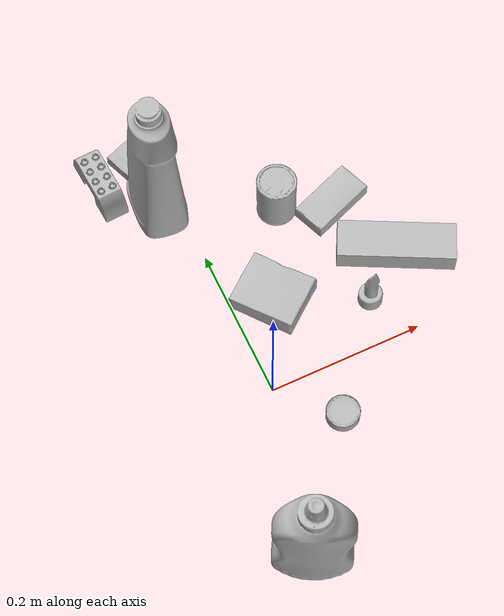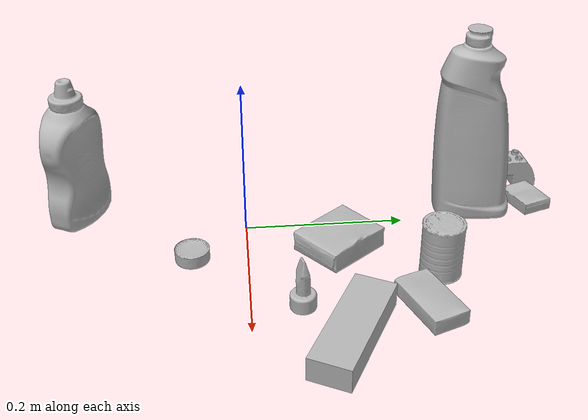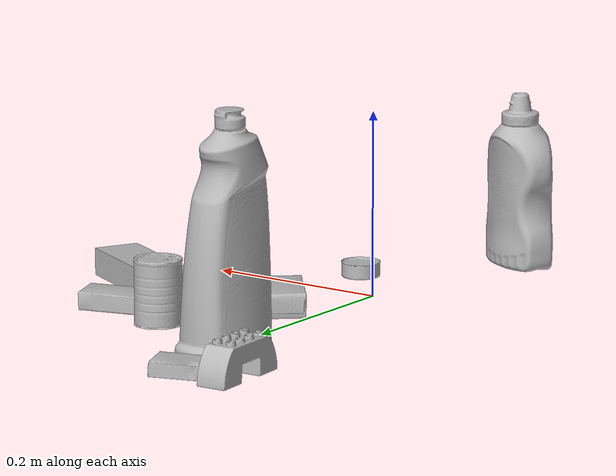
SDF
<sdf version="1.4">
  <world name="default">
    <light name="light1" type="point">
      <pose>0 0 1 0 0 0</pose>
      <diffuse>3 3 3 1</diffuse>
      <specular>3 3 3 1</specular>
    </light>
    <light name="light2" type="point">
      <pose>0 0.5 2 0 0 0</pose>
      <diffuse>1 1 1 1</diffuse>
      <specular>1 1 1 1</specular>
    </light>
    <light name="light3" type="point">
      <pose>0 0.5 2 0 0 0</pose>
      <diffuse>3 3 3 1</diffuse>
      <specular>3 3 3 1</specular>
    </light>
    <scene>
      <ambient>0.7 0.7 0.7</ambient>
    </scene>
    <model name="bottle1">
      <link name="link_bottle1">
        <collision name="default">
          <geometry>
            <mesh>
              <uri>model://mustard_bottle/collision_meshes/collision.obj</uri>
              <scale>1.0 1.0 1.0</scale>
            </mesh>
          </geometry>
          <surface>
            <friction>
              <ode>
                <mu>0.5</mu>
                <mu2>0.5</mu2>
              </ode>
            </friction>
          <contact>
        <ode>
            <max_vel>0</max_vel>
            <min_depth>0.0001</min_depth>
            <kp>1e8</kp>
        </ode>
    </contact></surface>
        </collision>
        <visual name="default">
          <geometry>
            <mesh>
              <uri>model://mustard_bottle/visual_meshes/visual.dae</uri>
              <scale>1.0 1.0 1.0</scale>
            </mesh>
          </geometry>
        </visual>
        <inertial>
          <mass>0.8303800225257874</mass>
          <pose>0.0005032453336752951 -0.00015647402324248105 -0.017475798726081848 0.0004182333015560062 0.0009465791044325989 0.02485372608929167</pose>
          <inertia>
            <ixx>0.0023058522</ixx>
            <iyy>0.0020231898</iyy>
            <izz>0.00060770847</izz>
            <ixy>0</ixy>
            <ixz>0</ixz>
            <iyz>0</iyz>
          </inertia>
        </inertial>
      </link>
      <pose>-0.04952969029545784 -0.2112952619791031 0.09615201503038406 1.4975381865226965e-05 1.6832638824680398e-05 1.0762915959985444</pose>
    </model>
    <model name="bottle2">
      <link name="link_bottle2">
        <collision name="default">
          <geometry>
            <mesh>
              <uri>model://bleach_cleanser/collision_meshes/collision.obj</uri>
              <scale>1.0 1.0 1.0</scale>
            </mesh>
          </geometry>
          <surface>
            <friction>
              <ode>
                <mu>0.5</mu>
                <mu2>0.5</mu2>
              </ode>
            </friction>
          <contact>
        <ode>
            <max_vel>0</max_vel>
            <min_depth>0.0001</min_depth>
            <kp>1e8</kp>
        </ode>
    </contact></surface>
        </collision>
        <visual name="default">
          <geometry>
            <mesh>
              <uri>model://bleach_cleanser/visual_meshes/visual.dae</uri>
              <scale>1.0 1.0 1.0</scale>
            </mesh>
          </geometry>
        </visual>
        <inertial>
          <mass>1.2443958520889282</mass>
          <pose>0.00012193184375064448 0.0037838828284293413 -0.02442161552608013 -0.07381670616387152 0.00042011519151103325 -0.006875073427896589</pose>
          <inertia>
            <ixx>0.006056655</ixx>
            <iyy>0.005643917</iyy>
            <izz>0.0010355307</izz>
            <ixy>0</ixy>
            <ixz>0</ixz>
            <iyz>0</iyz>
          </inertia>
        </inertial>
      </link>
      <pose>-0.023562218993902206 0.29318171739578247 0.12578421831130981 -0.00019998202146234988 1.585571730447507e-05 3.044079696640004</pose>
    </model>
    <model name="toy1">
      <link name="link_toy1">
        <collision name="default">
          <geometry>
            <mesh>
              <uri>model://e_lego_duplo/collision_meshes/collision.obj</uri>
              <scale>1.0 1.0 1.0</scale>
            </mesh>
          </geometry>
          <surface>
            <friction>
              <ode>
                <mu>0.5</mu>
                <mu2>0.5</mu2>
              </ode>
            </friction>
          <contact>
        <ode>
            <max_vel>0</max_vel>
            <min_depth>0.0001</min_depth>
            <kp>1e8</kp>
        </ode>
    </contact></surface>
        </collision>
        <visual name="default">
          <geometry>
            <mesh>
              <uri>model://e_lego_duplo/visual_meshes/visual.dae</uri>
              <scale>1.0 1.0 1.0</scale>
            </mesh>
          </geometry>
        </visual>
        <inertial>
          <mass>0.09737597405910492</mass>
          <pose>0.00032560466206632555 0.00023485408746637404 0.00195214559789747 -0.022567666099209266 -6.826041083389806e-05 -0.0076251575404409295</pose>
          <inertia>
            <ixx>2.0306108e-05</ixx>
            <iyy>8.3341496e-05</iyy>
            <izz>8.115786e-05</izz>
            <ixy>0</ixy>
            <ixz>0</ixz>
            <iyz>0</iyz>
          </inertia>
        </inertial>
      </link>
      <pose>-0.08054226636886597 0.34919074177742004 0.02180900238454342 2.0722018040484116e-08 -9.665601741178614e-08 1.6400035018505181</pose>
    </model>
    <model name="toy2">
      <link name="link_toy2">
        <collision name="default">
          <geometry>
            <mesh>
              <uri>model://e_toy_airplane/collision_meshes/collision.obj</uri>
              <scale>1.0 1.0 1.0</scale>
            </mesh>
          </geometry>
          <surface>
            <friction>
              <ode>
                <mu>0.5</mu>
                <mu2>0.5</mu2>
              </ode>
            </friction>
          <contact>
        <ode>
            <max_vel>0</max_vel>
            <min_depth>0.0001</min_depth>
            <kp>1e8</kp>
        </ode>
    </contact></surface>
        </collision>
        <visual name="default">
          <geometry>
            <mesh>
              <uri>model://e_toy_airplane/visual_meshes/visual.dae</uri>
              <scale>1.0 1.0 1.0</scale>
            </mesh>
          </geometry>
        </visual>
        <inertial>
          <mass>0.02463557943701744</mass>
          <pose>0.0001174048229586333 -2.2482929125544615e-05 -0.011187203228473663 0.005518471763615081 0.009228316378097946 0.15041226495803456</pose>
          <inertia>
            <ixx>7.519061e-06</ixx>
            <iyy>7.442144e-06</iyy>
            <izz>2.2597733e-06</izz>
            <ixy>0</ixy>
            <ixz>0</ixz>
            <iyz>0</iyz>
          </inertia>
        </inertial>
      </link>
      <pose>0.16262030601501465 0.05903379246592522 0.033212240785360336 4.0968364935749586e-05 -0.0001613413672787027 -1.4161706419366225</pose>
    </model>
    <model name="can1">
      <link name="link_can1">
        <collision name="default">
          <geometry>
            <mesh>
              <uri>model://master_chef_can/collision_meshes/collision.obj</uri>
              <scale>0.5 0.5 0.5</scale>
            </mesh>
          </geometry>
          <surface>
            <friction>
              <ode>
                <mu>0.5</mu>
                <mu2>0.5</mu2>
              </ode>
            </friction>
          <contact>
        <ode>
            <max_vel>0</max_vel>
            <min_depth>0.0001</min_depth>
            <kp>1e8</kp>
        </ode>
    </contact></surface>
        </collision>
        <visual name="default">
          <geometry>
            <mesh>
              <uri>model://master_chef_can/visual_meshes/visual.dae</uri>
              <scale>0.5 0.5 0.5</scale>
            </mesh>
          </geometry>
        </visual>
        <inertial>
          <mass>0.10604178160429001</mass>
          <pose>-4.6619643399026245e-05 1.3926852204804163e-07 -5.079910988570191e-05 -0.0017995162277820833 0.0006479167566960504 -0.6102671332965355</pose>
          <inertia>
            <ixx>6.2239335e-05</ixx>
            <iyy>6.178125e-05</iyy>
            <izz>3.439199e-05</izz>
            <ixy>0</ixy>
            <ixz>0</ixz>
            <iyz>0</iyz>
          </inertia>
        </inertial>
      </link>
      <pose>0.1123119667172432 0.22658884525299072 0.03530199080705643 -1.4520442745600227e-06 -1.0429758446953904e-06 -2.304286741894706</pose>
    </model>
    <model name="can2">
      <link name="link_can2">
        <collision name="default">
          <geometry>
            <mesh>
              <uri>model://tuna_fish_can/collision_meshes/collision.obj</uri>
              <scale>0.5 0.5 0.5</scale>
            </mesh>
          </geometry>
          <surface>
            <friction>
              <ode>
                <mu>0.5</mu>
                <mu2>0.5</mu2>
              </ode>
            </friction>
          <contact>
        <ode>
            <max_vel>0</max_vel>
            <min_depth>0.0001</min_depth>
            <kp>1e8</kp>
        </ode>
    </contact></surface>
        </collision>
        <visual name="default">
          <geometry>
            <mesh>
              <uri>model://tuna_fish_can/visual_meshes/visual.dae</uri>
              <scale>0.5 0.5 0.5</scale>
            </mesh>
          </geometry>
        </visual>
        <inertial>
          <mass>0.028372401371598244</mass>
          <pose>-2.0361669157864526e-05 -7.256527169374749e-06 -0.0005269024986773729 -0.0017944775646394609 0.00017161727950706725 0.2405381123423382</pose>
          <inertia>
            <ixx>3.8359926e-06</ixx>
            <iyy>3.8200033e-06</iyy>
            <izz>6.5639315e-06</izz>
            <ixy>0</ixy>
            <ixz>0</ixz>
            <iyz>0</iyz>
          </inertia>
        </inertial>
      </link>
      <pose>0.06202680990099907 -0.0667443722486496 0.008520000614225864 3.8441948532154484e-11 -6.4444332879550886e-09 0.4320205106640526</pose>
    </model>
    <model name="box1">
      <link name="link_box1">
        <collision name="default">
          <geometry>
            <mesh>
              <uri>model://jenga/collision_meshes/collision.obj</uri>
              <scale>1.0 1.0 1.0</scale>
            </mesh>
          </geometry>
          <surface>
            <friction>
              <ode>
                <mu>0.5</mu>
                <mu2>0.5</mu2>
              </ode>
            </friction>
          <contact>
        <ode>
            <max_vel>0</max_vel>
            <min_depth>0.0001</min_depth>
            <kp>1e8</kp>
        </ode>
    </contact></surface>
        </collision>
        <visual name="default">
          <geometry>
            <mesh>
              <uri>model://jenga/visual_meshes/visual.dae</uri>
              <scale>1.0 1.0 1.0</scale>
            </mesh>
          </geometry>
        </visual>
        <inertial>
          <mass>0.19909408688545227</mass>
          <pose>-2.502855807051674e-07 -0.0001025000965455547 -4.0923401684267446e-05 0.0 -7.34215461761844e-07 0.0</pose>
          <inertia>
            <ixx>5.509416e-05</ixx>
            <iyy>0.00037331658</iyy>
            <izz>0.00039854718</izz>
            <ixy>0</ixy>
            <ixz>0</ixz>
            <iyz>0</iyz>
          </inertia>
        </inertial>
      </link>
      <pose>0.22313489019870758 0.10744909942150116 0.014999999664723873 6.63325969628932e-09 7.19141325882959e-10 -0.47531327717381333</pose>
    </model>
    <model name="box2">
      <link name="link_box2">
        <collision name="default">
          <geometry>
            <mesh>
              <uri>model://cracker_box/collision_meshes/collision.obj</uri>
              <scale>0.25 0.25 0.25</scale>
            </mesh>
          </geometry>
          <surface>
            <friction>
              <ode>
                <mu>0.5</mu>
                <mu2>0.5</mu2>
              </ode>
            </friction>
          <contact>
        <ode>
            <max_vel>0</max_vel>
            <min_depth>0.0001</min_depth>
            <kp>1e8</kp>
        </ode>
    </contact></surface>
        </collision>
        <visual name="default">
          <geometry>
            <mesh>
              <uri>model://cracker_box/visual_meshes/visual.dae</uri>
              <scale>0.25 0.25 0.25</scale>
            </mesh>
          </geometry>
        </visual>
        <inertial>
          <mass>0.04114612191915512</mass>
          <pose>0.00023660354781895876 6.358561950037256e-05 -0.0004257383698131889 -0.00031620780631524763 -0.011106488668660274 0.002546795934166242</pose>
          <inertia>
            <ixx>6.5410845e-06</ixx>
            <iyy>1.0800616e-05</iyy>
            <izz>1.5413472e-05</izz>
            <ixy>0</ixy>
            <ixz>0</ixz>
            <iyz>0</iyz>
          </inertia>
        </inertial>
      </link>
      <pose>-0.02629198133945465 0.3715139329433441 0.009120450355112553 -0.011788109478304417 -0.007367132989907976 0.3585188688918507</pose>
    </model>
    <model name="box3">
      <link name="link_box3">
        <collision name="default">
          <geometry>
            <mesh>
              <uri>model://gelatin_box/collision_meshes/collision.obj</uri>
              <scale>1.0 1.0 1.0</scale>
            </mesh>
          </geometry>
          <surface>
            <friction>
              <ode>
                <mu>0.5</mu>
                <mu2>0.5</mu2>
              </ode>
            </friction>
          <contact>
        <ode>
            <max_vel>0</max_vel>
            <min_depth>0.0001</min_depth>
            <kp>1e8</kp>
        </ode>
    </contact></surface>
        </collision>
        <visual name="default">
          <geometry>
            <mesh>
              <uri>model://gelatin_box/visual_meshes/visual.dae</uri>
              <scale>1.0 1.0 1.0</scale>
            </mesh>
          </geometry>
        </visual>
        <inertial>
          <mass>0.2244011014699936</mass>
          <pose>0.00043196187471039593 0.00011156871914863586 -0.00036403213744051754 -0.001050372105108351 -0.004755819619724262 0.01644056133527167</pose>
          <inertia>
            <ixx>0.00015840889</ixx>
            <iyy>0.000113150636</iyy>
            <izz>0.0002411336</izz>
            <ixy>0</ixy>
            <ixz>0</ixz>
            <iyz>0</iyz>
          </inertia>
        </inertial>
      </link>
      <pose>0.05320627987384796 0.1125260442495346 0.015168309211730957 0.005597016100034012 -0.007304083022238714 0.6672477362344355</pose>
    </model>
    <model name="box4">
      <link name="link_box4">
        <collision name="default">
          <geometry>
            <mesh>
              <uri>model://sugar_box/collision_meshes/collision.obj</uri>
              <scale>0.5 0.5 0.5</scale>
            </mesh>
          </geometry>
          <surface>
            <friction>
              <ode>
                <mu>0.5</mu>
                <mu2>0.5</mu2>
              </ode>
            </friction>
          <contact>
        <ode>
            <max_vel>0</max_vel>
            <min_depth>0.0001</min_depth>
            <kp>1e8</kp>
        </ode>
    </contact></surface>
        </collision>
        <visual name="default">
          <geometry>
            <mesh>
              <uri>model://sugar_box/visual_meshes/visual.dae</uri>
              <scale>0.5 0.5 0.5</scale>
            </mesh>
          </geometry>
        </visual>
        <inertial>
          <mass>0.11117161065340042</mass>
          <pose>0.0005171863595023751 1.9245546354795806e-05 -0.00018182402709499002 -0.0004046265622990317 0.001050663638873437 0.002615378555930204</pose>
          <inertia>
            <ixx>2.3156968e-05</ixx>
            <iyy>7.4848074e-05</iyy>
            <izz>8.960209e-05</izz>
            <ixy>0</ixy>
            <ixz>0</ixz>
            <iyz>0</iyz>
          </inertia>
        </inertial>
      </link>
      <pose>0.17778101563453674 0.20115046203136444 0.011399307288229465 0.0007743540187436728 -0.023433334836695203 0.36029646273416127</pose>
    </model>
  <physics type="ode">
      <max_contacts>50</max_contacts>
      <ode>
        <solver>
          <type>quick</type>
          <iters>75</iters>
        </solver>
        <constraints>
          <contact_max_correcting_vel>0</contact_max_correcting_vel>
          <contact_surface_layer>0</contact_surface_layer>
        </constraints>
      </ode>
    </physics></world>
</sdf>
